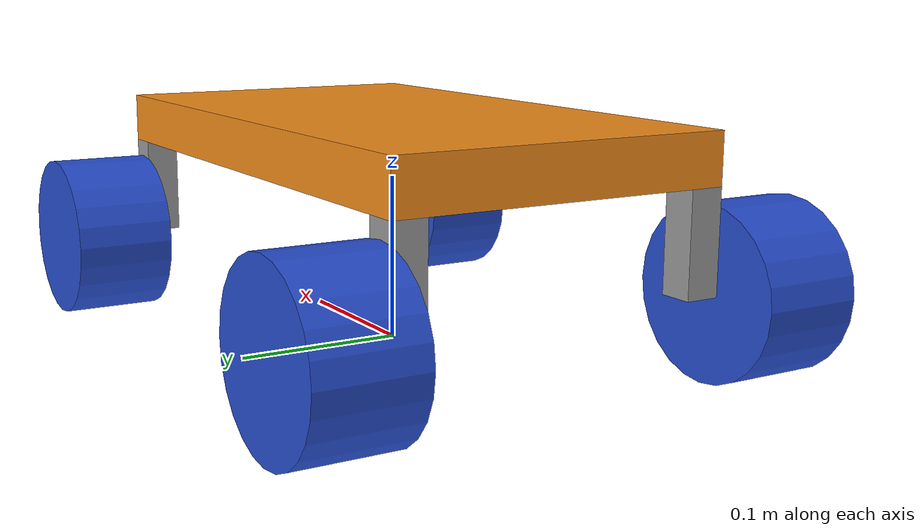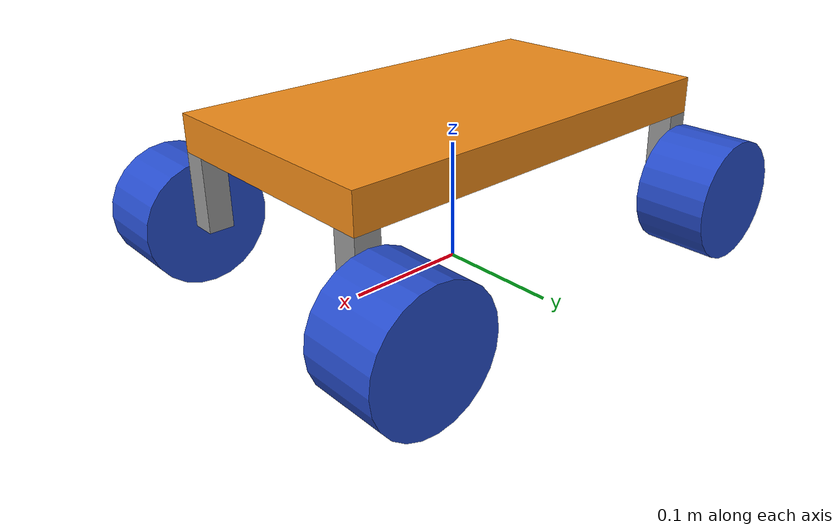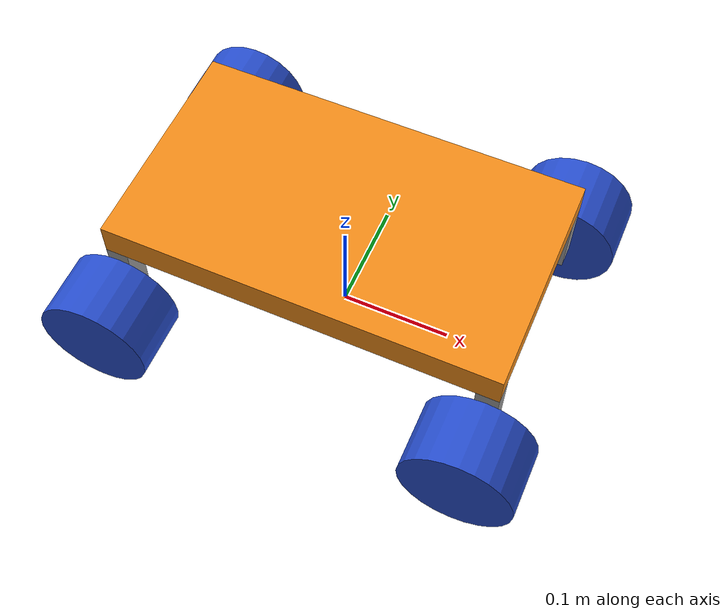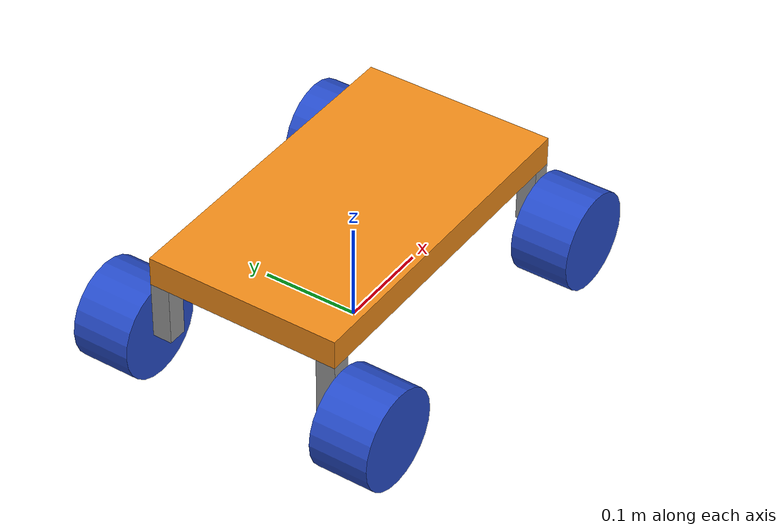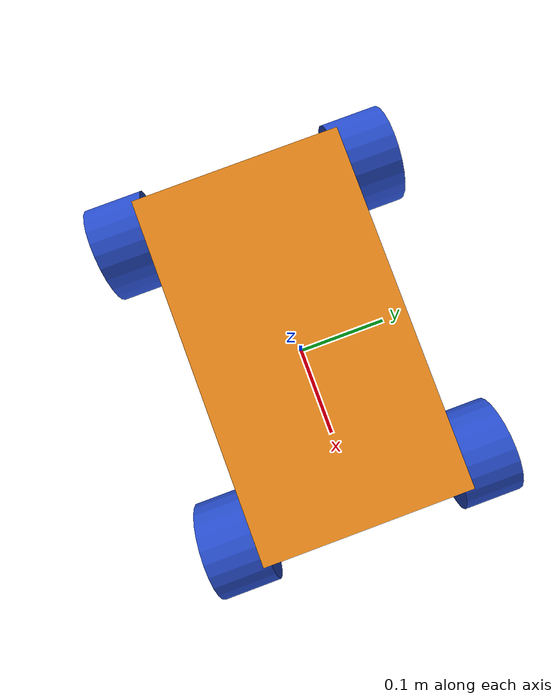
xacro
<?xml version="1.0"?>
<robot xmlns:xacro="http://www.ros.org/wiki/xacro">

    <!-- PROPERTIES -->

    <xacro:property name="chassis_length" value="0.35" />
    <xacro:property name="chassis_width" value="0.2" />
    <xacro:property name="chassis_height" value="0.03" />
    <xacro:property name="frame_length" value="0.06" />
    <xacro:property name="frame_width" value="0.02" />
    <xacro:property name="frame_height" value="0.02" />
    <xacro:property name="wheel_radius" value="0.05" />
    <xacro:property name="wheel_length" value="0.06" />

    <!-- BASE FOOTPRINT LINK -->

    <link name="base_footprint" />

    <!-- CHASSIS LINK -->

    <joint name="base_joint" type="fixed">
        <parent link="base_footprint" />
        <child link="chassis_link" />
        <origin xyz="0 0 ${wheel_radius + frame_length}" rpy="0 0 0"/>
    </joint>

    <link name="chassis_link">
        <visual>
            <geometry>
                <box size="${chassis_length} ${chassis_width} ${chassis_height}" />
            </geometry>
            <origin xyz="0 0 ${chassis_height / 2.0}" rpy="0 0 0" />
            <material name="orange" />
        </visual>
        <collision>
            <geometry>
                <box size="${chassis_length} ${chassis_width} ${chassis_height}" />
            </geometry>
            <origin xyz="0 0 ${chassis_height / 2.0}" rpy="0 0 0" />
        </collision>
        <xacro:box_inertia m="3.0" l="${2*chassis_length}" w="${2*chassis_width}" h="${2*chassis_height}"
                           xyz="0 0 ${chassis_height / 2.0}" rpy="0 0 0" />
    </link>

    <gazebo reference="chassis_link">
        <material>Gazebo/Orange</material>
    </gazebo>

    <!-- FRAME MACRO -->

     <xacro:macro name="frame_link" params="prefix">
        <link name="${prefix}_frame_link">
            <visual>
                <geometry>
                    <box size="${frame_length} ${frame_width} ${frame_height}" />
                </geometry>
            <origin xyz="0 0 0" rpy="0 ${pi / 2.0} 0" />
            <material name="grey" />
        </visual>
        <collision>
            <geometry>
                <box size="${frame_length} ${frame_width} ${frame_height}" />
            </geometry>
            <origin xyz="0 0 0" rpy="0 ${pi / 2.0} 0" />
        </collision>
        <xacro:box_inertia m="0.7" l="${2*frame_length}" w="${2*frame_width}" h="${2*frame_height}"
                           xyz="0 0 0" rpy="0 ${pi / 2.0} 0" />
        </link>
    </xacro:macro>

    <!-- WHEEL MACRO -->

    <xacro:macro name="wheel_link" params="prefix">
        <link name="${prefix}_wheel_link">
            <visual>
                <geometry>
                    <cylinder radius="${wheel_radius}" length="${wheel_length}" />
                </geometry>
                <origin xyz="0 0 0" rpy="${pi / 2.0} 0 0" />
                <material name="blue" />
            </visual>
            <collision>
                <geometry>
                    <cylinder radius="${wheel_radius}" length="${wheel_length}" />
                </geometry>
                <origin xyz="0 0 0" rpy="${pi / 2.0} 0 0" />
            </collision>
            <xacro:cylinder_inertia m="0.7" r="${2*wheel_radius}" h="${2*wheel_length}"
                                    xyz="0 0 0" rpy="${pi / 2.0} 0 0" />
        </link>
    </xacro:macro>

    <!-- BACK RIGHT FRAME LINK -->

    <joint name="chassis_back_right_frame_joint" type="fixed">
        <parent link="chassis_link" />
        <child link="back_right_frame_link" />
        <origin xyz="${-(chassis_length - frame_width) / 2.0} ${-(chassis_width - frame_width) / 2.0  }  ${-frame_length / 2.0} "
                rpy="0 0 0" />
    </joint>

    <xacro:frame_link prefix="back_right" />

    <gazebo reference="back_right_frame_link">
        <material>Gazebo/Grey</material>
    </gazebo>

    <!-- BACK LEFT FRAME LINK -->

    <joint name="chassis_back_left_frame_joint" type="fixed">
        <parent link="chassis_link" />
        <child link="back_left_frame_link" />
        <origin xyz="${-(chassis_length - frame_width) / 2.0} ${(chassis_width - frame_width) / 2.0  }  ${-frame_length / 2.0} "
                rpy="0 0 0" />
    </joint>

    <xacro:frame_link prefix="back_left" />

    <gazebo reference="back_left_frame_link">
        <material>Gazebo/Grey</material>
    </gazebo>

    <!-- FRONT RIGHT FRAME LINK -->

    <joint name="chassis_front_right_frame_joint" type="fixed">
        <parent link="chassis_link" />
        <child link="front_right_frame_link" />
         <origin xyz="${(chassis_length - frame_width) / 2.0} ${-(chassis_width - frame_width) / 2.0  }  ${-frame_length / 2.0} "
                rpy="0 0 0" />
    </joint>

    <xacro:frame_link prefix="front_right" />

    <gazebo reference="front_right_frame_link">
        <material>Gazebo/Grey</material>
    </gazebo>

    <!-- FRONT LEFT FRAME LINK -->

    <joint name="chassis_front_left_frame_joint" type="fixed">
        <parent link="chassis_link" />
        <child link="front_left_frame_link" />
         <origin xyz="${(chassis_length - frame_width) / 2.0} ${(chassis_width - frame_width) / 2.0  }  ${-frame_length / 2.0} "
                rpy="0 0 0" />
    </joint>

    <xacro:frame_link prefix="front_left" />

    <gazebo reference="front_left_frame_link">
        <material>Gazebo/Grey</material>
    </gazebo>

    <!-- BACK RIGHT WHEEL LINK -->

    <joint name="back_right_frame_wheel_joint" type="continuous">
        <parent link="back_right_frame_link" />
        <child link="back_right_wheel_link" />
        <origin xyz="0 ${-(frame_width + wheel_length) / 2.0} ${-(frame_length / 2.0)}" rpy="0 0 0" />
        <axis xyz="0 1 0" />
    </joint>

    <xacro:wheel_link prefix="back_right" />

    <gazebo reference="back_right_wheel_link">
        <material>Gazebo/Blue</material>
    </gazebo>

    <!-- BACK LEFT WHEEL LINK -->

    <joint name="back_left_frame_wheel_joint" type="continuous">
        <parent link="back_left_frame_link" />
        <child link="back_left_wheel_link" />
        <origin xyz="0 ${(frame_width + wheel_length) / 2.0} ${-(frame_length / 2.0)}" rpy="0 0 0" />
        <axis xyz="0 1 0" />
    </joint>

    <xacro:wheel_link prefix="back_left" />

    <gazebo reference="back_left_wheel_link">
        <material>Gazebo/Blue</material>
    </gazebo>

    <!-- FRONT RIGHT WHEEL LINK -->

    <joint name="front_right_frame_wheel_joint" type="continuous">
        <parent link="front_right_frame_link" />
        <child link="front_right_wheel_link" />
        <origin xyz="0 ${-(frame_width + wheel_length) / 2.0} ${-(frame_length / 2.0)}" rpy="0 0 0" />
        <axis xyz="0 1 0" />
    </joint>

    <xacro:wheel_link prefix="front_right" />

    <gazebo reference="front_right_wheel_link">
        <material>Gazebo/Blue</material>
        <mu1 value="0.1" />
        <mu2 value="0.1" />
    </gazebo>

    <!-- FRONT LEFT WHEEL LINK -->

    <joint name="front_left_frame_wheel_joint" type="continuous">
        <parent link="front_left_frame_link" />
        <child link="front_left_wheel_link" />
        <origin xyz="0 ${(frame_width + wheel_length) / 2.0} ${-(frame_length / 2.0)}" rpy="0 0 0" />
        <axis xyz="0 1 0" />
    </joint>

    <xacro:wheel_link prefix="front_left" />

    <gazebo reference="front_left_wheel_link">
        <material>Gazebo/Blue</material>
        <mu1 value="0.1" />
        <mu2 value="0.1" />
    </gazebo>

</robot>
